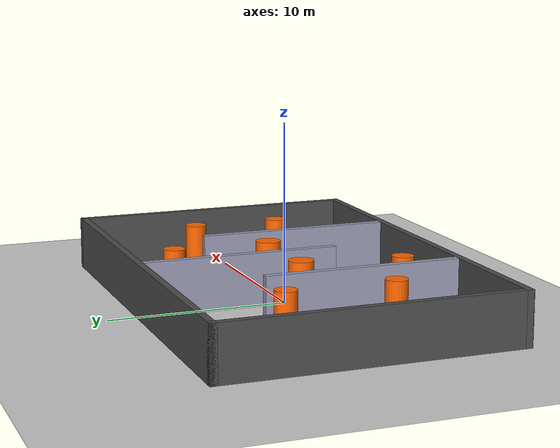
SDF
<?xml version="1.0"?>
<sdf version="1.6"><world name="complex">
<include><uri>model://ground_plane</uri></include>
<include><uri>model://sun</uri></include>
<model name='border0'><static>true</static><pose>0 8.2 1.5 0 0 0</pose><link name='l'><collision name='c'><geometry><box><size>24.8 0.4 3.0</size></box></geometry></collision><visual name='v'><geometry><box><size>24.8 0.4 3.0</size></box></geometry><material><ambient>0.3 0.3 0.3 1</ambient><diffuse>0.3 0.3 0.3 1</diffuse></material></visual></link></model>
<model name='border1'><static>true</static><pose>0 -8.2 1.5 0 0 0</pose><link name='l'><collision name='c'><geometry><box><size>24.8 0.4 3.0</size></box></geometry></collision><visual name='v'><geometry><box><size>24.8 0.4 3.0</size></box></geometry><material><ambient>0.3 0.3 0.3 1</ambient><diffuse>0.3 0.3 0.3 1</diffuse></material></visual></link></model>
<model name='border2'><static>true</static><pose>12.2 0 1.5 0 0 0</pose><link name='l'><collision name='c'><geometry><box><size>0.4 16.8 3.0</size></box></geometry></collision><visual name='v'><geometry><box><size>0.4 16.8 3.0</size></box></geometry><material><ambient>0.3 0.3 0.3 1</ambient><diffuse>0.3 0.3 0.3 1</diffuse></material></visual></link></model>
<model name='border3'><static>true</static><pose>-12.2 0 1.5 0 0 0</pose><link name='l'><collision name='c'><geometry><box><size>0.4 16.8 3.0</size></box></geometry></collision><visual name='v'><geometry><box><size>0.4 16.8 3.0</size></box></geometry><material><ambient>0.3 0.3 0.3 1</ambient><diffuse>0.3 0.3 0.3 1</diffuse></material></visual></link></model>
<model name='wall0'><static>true</static><pose>-5.0 -2.5 1.5 0 0 0</pose><link name='l'><collision name='c'><geometry><box><size>0.4 11.0 3.0</size></box></geometry></collision><visual name='v'><geometry><box><size>0.4 11.0 3.0</size></box></geometry><material><ambient>0.6 0.6 0.7 1</ambient><diffuse>0.6 0.6 0.7 1</diffuse></material></visual></link></model>
<model name='wall1'><static>true</static><pose>0.0 2.5 1.5 0 0 0</pose><link name='l'><collision name='c'><geometry><box><size>0.4 11.0 3.0</size></box></geometry></collision><visual name='v'><geometry><box><size>0.4 11.0 3.0</size></box></geometry><material><ambient>0.6 0.6 0.7 1</ambient><diffuse>0.6 0.6 0.7 1</diffuse></material></visual></link></model>
<model name='wall2'><static>true</static><pose>5.0 -2.5 1.5 0 0 0</pose><link name='l'><collision name='c'><geometry><box><size>0.4 11.0 3.0</size></box></geometry></collision><visual name='v'><geometry><box><size>0.4 11.0 3.0</size></box></geometry><material><ambient>0.6 0.6 0.7 1</ambient><diffuse>0.6 0.6 0.7 1</diffuse></material></visual></link></model>
<model name='obs0'><static>true</static><pose>-8 3 1.5 0 0 0</pose><link name='l'><collision name='c'><geometry><cylinder><radius>0.6</radius><length>3.0</length></cylinder></geometry></collision><visual name='v'><geometry><cylinder><radius>0.6</radius><length>3.0</length></cylinder></geometry><material><ambient>1 0.4 0 1</ambient><diffuse>1 0.4 0 1</diffuse></material></visual></link></model>
<model name='obs1'><static>true</static><pose>-8 -3 1.5 0 0 0</pose><link name='l'><collision name='c'><geometry><cylinder><radius>0.6</radius><length>3.0</length></cylinder></geometry></collision><visual name='v'><geometry><cylinder><radius>0.6</radius><length>3.0</length></cylinder></geometry><material><ambient>1 0.4 0 1</ambient><diffuse>1 0.4 0 1</diffuse></material></visual></link></model>
<model name='obs2'><static>true</static><pose>-2.5 0 1.5 0 0 0</pose><link name='l'><collision name='c'><geometry><cylinder><radius>0.7</radius><length>3.0</length></cylinder></geometry></collision><visual name='v'><geometry><cylinder><radius>0.7</radius><length>3.0</length></cylinder></geometry><material><ambient>1 0.4 0 1</ambient><diffuse>1 0.4 0 1</diffuse></material></visual></link></model>
<model name='obs3'><static>true</static><pose>-3.5 -5.5 1.5 0 0 0</pose><link name='l'><collision name='c'><geometry><cylinder><radius>0.6</radius><length>3.0</length></cylinder></geometry></collision><visual name='v'><geometry><cylinder><radius>0.6</radius><length>3.0</length></cylinder></geometry><material><ambient>1 0.4 0 1</ambient><diffuse>1 0.4 0 1</diffuse></material></visual></link></model>
<model name='obs4'><static>true</static><pose>2.5 0 1.5 0 0 0</pose><link name='l'><collision name='c'><geometry><cylinder><radius>0.7</radius><length>3.0</length></cylinder></geometry></collision><visual name='v'><geometry><cylinder><radius>0.7</radius><length>3.0</length></cylinder></geometry><material><ambient>1 0.4 0 1</ambient><diffuse>1 0.4 0 1</diffuse></material></visual></link></model>
<model name='obs5'><static>true</static><pose>2.5 5.5 1.5 0 0 0</pose><link name='l'><collision name='c'><geometry><cylinder><radius>0.6</radius><length>3.0</length></cylinder></geometry></collision><visual name='v'><geometry><cylinder><radius>0.6</radius><length>3.0</length></cylinder></geometry><material><ambient>1 0.4 0 1</ambient><diffuse>1 0.4 0 1</diffuse></material></visual></link></model>
<model name='obs6'><static>true</static><pose>8 2.5 1.5 0 0 0</pose><link name='l'><collision name='c'><geometry><cylinder><radius>0.6</radius><length>3.0</length></cylinder></geometry></collision><visual name='v'><geometry><cylinder><radius>0.6</radius><length>3.0</length></cylinder></geometry><material><ambient>1 0.4 0 1</ambient><diffuse>1 0.4 0 1</diffuse></material></visual></link></model>
<model name='obs7'><static>true</static><pose>8 -2.5 1.5 0 0 0</pose><link name='l'><collision name='c'><geometry><cylinder><radius>0.6</radius><length>3.0</length></cylinder></geometry></collision><visual name='v'><geometry><cylinder><radius>0.6</radius><length>3.0</length></cylinder></geometry><material><ambient>1 0.4 0 1</ambient><diffuse>1 0.4 0 1</diffuse></material></visual></link></model>
<model name='goal'><static>true</static><pose>10.0 0.0 0.02 0 0 0</pose><link name='l'><visual name='v'><geometry><cylinder><radius>0.6</radius><length>0.04</length></cylinder></geometry><material><ambient>0 1 0 1</ambient><diffuse>0 1 0 1</diffuse></material></visual></link></model>

<model name="drone"><pose>-10.0 0.0 1.5 0 0 0</pose>
<link name="base_link"><gravity>false</gravity>
<inertial><mass>1.0</mass><inertia><ixx>0.01</ixx><iyy>0.01</iyy><izz>0.02</izz><ixy>0</ixy><ixz>0</ixz><iyz>0</iyz></inertia></inertial>
<visual name="body"><geometry><box><size>0.25 0.25 0.08</size></box></geometry><material><ambient>0.1 0.1 0.1 1</ambient><diffuse>0.1 0.1 0.1 1</diffuse></material></visual>
<visual name="arm1"><pose>0 0 0 0 0 0.785</pose><geometry><box><size>0.7 0.04 0.03</size></box></geometry></visual>
<visual name="arm2"><pose>0 0 0 0 0 -0.785</pose><geometry><box><size>0.7 0.04 0.03</size></box></geometry></visual>
<visual name="r1"><pose>0.25 0.25 0.04 0 0 0</pose><geometry><cylinder><radius>0.12</radius><length>0.01</length></cylinder></geometry><material><ambient>0 0.5 1 1</ambient><diffuse>0 0.5 1 1</diffuse></material></visual>
<visual name="r2"><pose>-0.25 0.25 0.04 0 0 0</pose><geometry><cylinder><radius>0.12</radius><length>0.01</length></cylinder></geometry><material><ambient>0 0.5 1 1</ambient><diffuse>0 0.5 1 1</diffuse></material></visual>
<visual name="r3"><pose>0.25 -0.25 0.04 0 0 0</pose><geometry><cylinder><radius>0.12</radius><length>0.01</length></cylinder></geometry><material><ambient>0 0.5 1 1</ambient><diffuse>0 0.5 1 1</diffuse></material></visual>
<visual name="r4"><pose>-0.25 -0.25 0.04 0 0 0</pose><geometry><cylinder><radius>0.12</radius><length>0.01</length></cylinder></geometry><material><ambient>0 0.5 1 1</ambient><diffuse>0 0.5 1 1</diffuse></material></visual>
<sensor name="lidar" type="ray"><pose>0 0 0.06 0 0 0</pose><always_on>true</always_on><update_rate>10</update_rate><visualize>true</visualize>
<ray><scan><horizontal><samples>360</samples><resolution>1</resolution><min_angle>-3.14159</min_angle><max_angle>3.14159</max_angle></horizontal></scan>
<range><min>0.2</min><max>6.0</max><resolution>0.01</resolution></range></ray>
<plugin name="lidar_plugin" filename="libgazebo_ros_ray_sensor.so"><ros><namespace>/drone</namespace><remapping>~/out:=scan</remapping></ros>
<output_type>sensor_msgs/LaserScan</output_type><frame_name>base_link</frame_name></plugin></sensor>
</link>
<plugin name="drone_move" filename="libgazebo_ros_planar_move.so"><ros><namespace>/drone</namespace></ros>
<update_rate>50</update_rate><publish_rate>20</publish_rate><publish_odom>true</publish_odom><publish_odom_tf>true</publish_odom_tf>
<odometry_frame>odom</odometry_frame><robot_base_frame>base_link</robot_base_frame></plugin>
</model>
</world></sdf>
